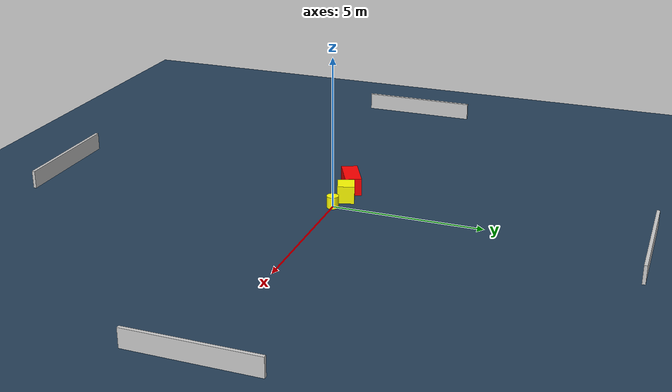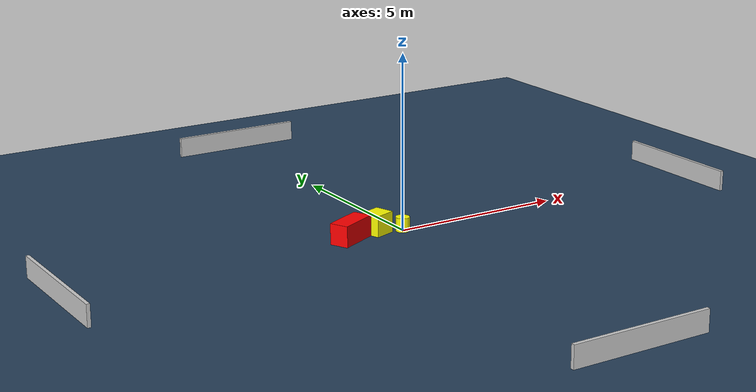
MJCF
<?xml version="1.0" ?>
<mujoco model="generated_environment">
  <option timestep="0.01" integrator="RK4" cone="elliptic"/>
  <default>
    <geom density="1"/>
  </default>
  <asset>
    <texture builtin="gradient" height="3072" name="skybox" rgb1="0.3 0.5 0.7" rgb2="0 0 0" type="skybox" width="512"/>
    <texture builtin="checker" height="300" name="groundplane" rgb1="0.2 0.3 0.4" rgb2="0.1 0.2 0.3" type="2d" width="300"/>
    <material name="groundplane" reflectance="0.2" texrepeat="5 5" texture="groundplane"/>
  </asset>
  <worldbody>
    <light dir="0 0 -1" directional="true" pos="0 0 1.5"/>
    <geom condim="3" friction="0.5 0.005 0.001" material="groundplane" name="floor" pos="0 0 0" size="0 0 0.05" type="plane"/>
    <body name="walls">
      <geom name="wall_1" condim="4" pos="-10.0 0.0 0.3" rgba="0.800000011920929 0.800000011920929 0.800000011920929 1.0" size="0.05 2.0 0.3" type="box"/>
      <geom name="wall_2" condim="4" pos="10.0 0.0 0.3" rgba="0.800000011920929 0.800000011920929 0.800000011920929 1.0" size="0.05 2.0 0.3" type="box"/>
      <geom name="wall_3" condim="4" pos="0.0 -10.0 0.3" rgba="0.800000011920929 0.800000011920929 0.800000011920929 1.0" size="2.0 0.05 0.3" type="box"/>
      <geom name="wall_4" condim="4" pos="0.0 10.0 0.3" rgba="0.800000011920929 0.800000011920929 0.800000011920929 1.0" size="2.0 0.05 0.3" type="box"/>
    </body>
    <body name="robot">
      <joint name="joint_x" type="slide" pos="0 0 0" axis="1 0 0"/>
      <joint name="joint_y" type="slide" pos="0 0 0" axis="0 1 0"/>
      <geom name="robot" type="cylinder" pos="0.0 0.0 0.2" size="0.2 0.2 0.0" mass="5.0" friction="1.0 0.005 0.0001" condim="4" rgba="1.0 1.0 0.0 1.0"/>
    </body>
    <body name="obstacle_1_movable">
      <geom name="obstacle_1_movable" condim="4" pos="-0.6838947072236449 0.21210858768710408 0.3" euler="0 0 198.77200083352545" friction="0.0 0.005 0.001" rgba="1.0 1.0 0.0 1.0" size="0.308323580155624 0.27777065079071817 0.3" type="box" mass="0.1"/>
      <joint type="free"/>
    </body>
    <body name="obstacle_2_static">
      <geom name="obstacle_2_static" condim="4" pos="-1.6268020518089408 0.06331662053677989 0.3" euler="0 0 116.09874066991279" friction="0.0 0.005 0.001" rgba="1.0 0.0 0.0 1.0" size="0.2720312266731732 0.5899122583433742 0.3" type="box"/>
    </body>
  </worldbody>
  <actuator>
    <motor name="actuator_x" joint="joint_x" gear="1" ctrlrange="-1 1"/>
    <motor name="actuator_y" joint="joint_y" gear="1" ctrlrange="-1 1"/>
  </actuator>
</mujoco>
